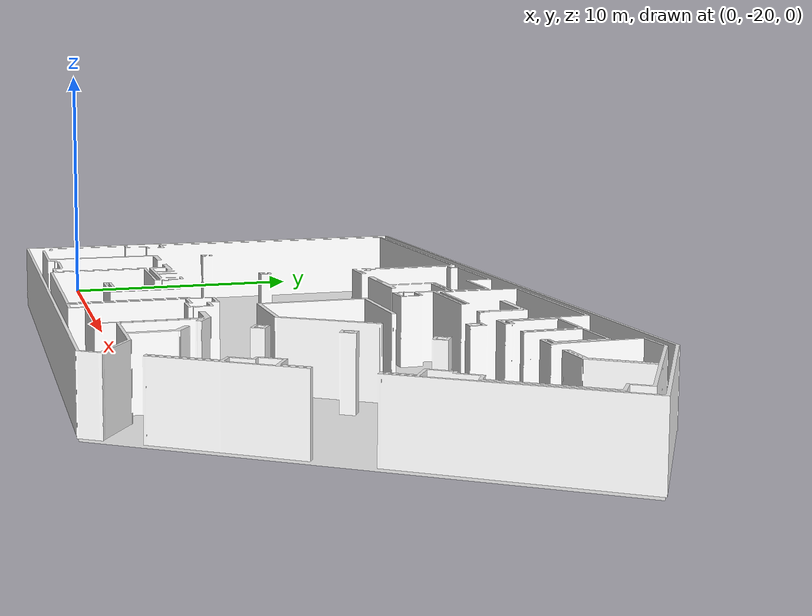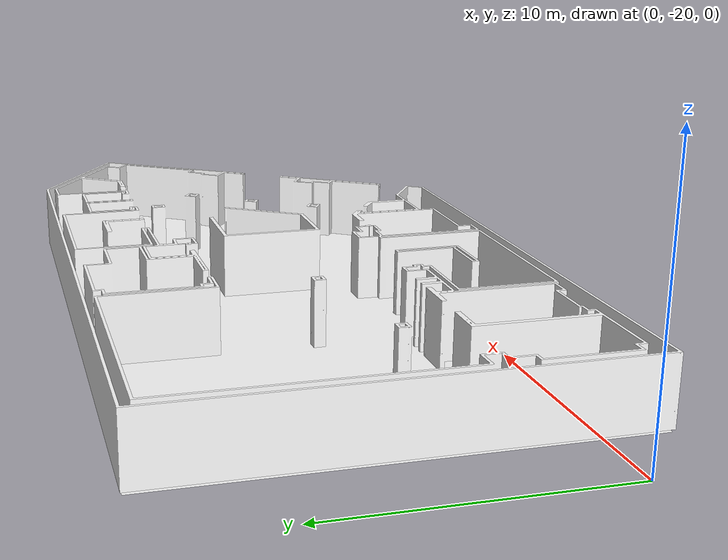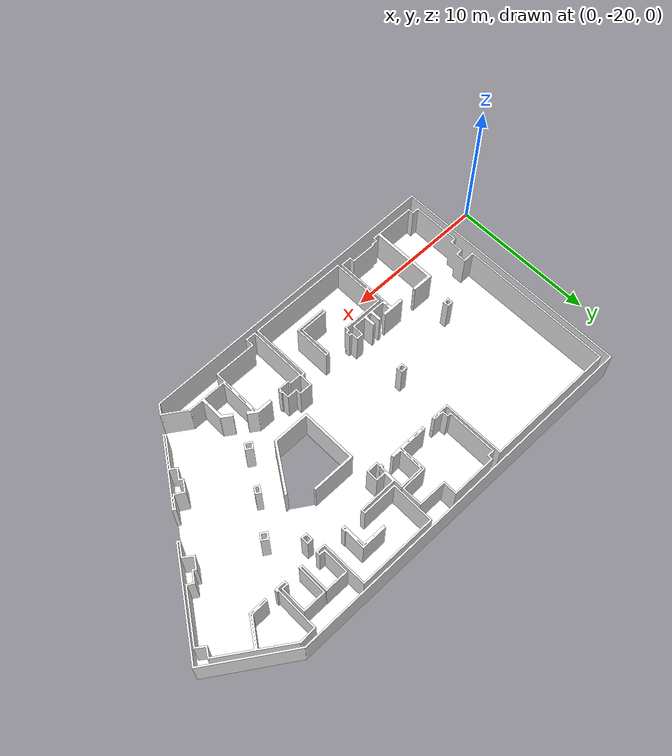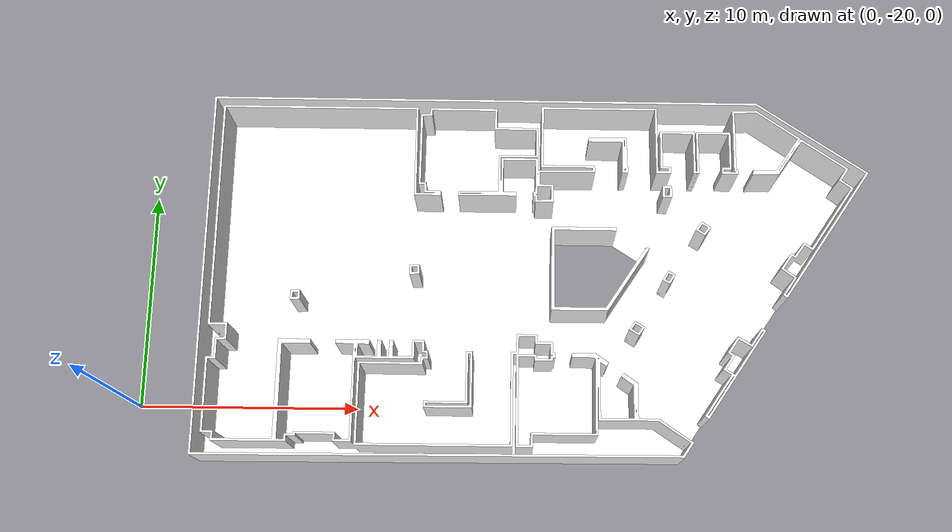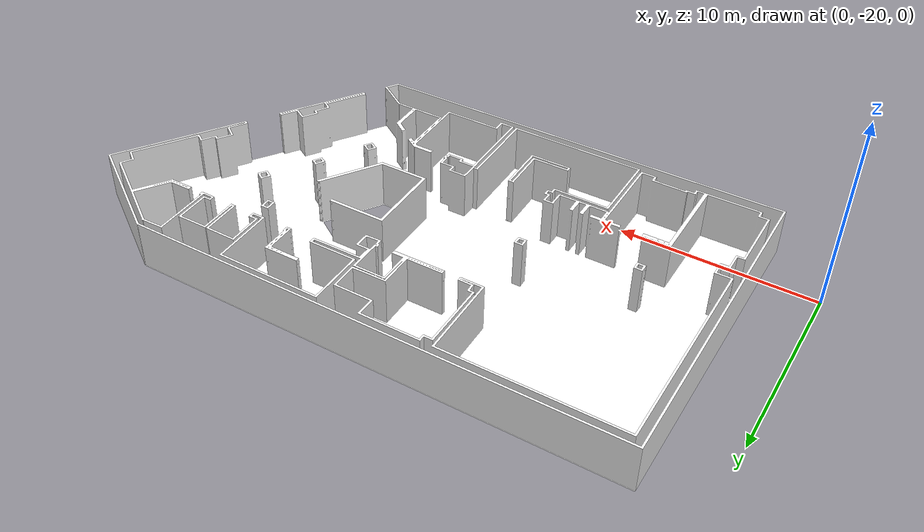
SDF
<?xml version='1.0' encoding='utf-8'?>
<sdf version="1.7">
  <model name="far_RDC">
    <static>true</static>
    <link name="floor_1">
      <visual name="visual">
        <geometry>
          <mesh>
            <uri>model://far_RDC/meshes/floor_1.obj</uri>
          </mesh>
        </geometry>
        <material>
          <diffuse>1.0 1.0 1.0</diffuse>
          <specular>0.1 0.1 0.1</specular>
          <pbr>
            <metal>
              <metalness>0.0</metalness>
              <albedo_map>model://far_RDC/meshes/blue_linoleum.png</albedo_map>
            </metal>
          </pbr>
          <script>
            <uri>model://far_RDC/meshes/</uri>
            <name>floor_1_Diffuse</name>
          </script>
        </material>
      </visual>
      <collision name="collision">
        <geometry>
          <mesh>
            <uri>model://far_RDC/meshes/floor_1.obj</uri>
          </mesh>
        </geometry>
        <surface>
          <contact>
            <collide_bitmask>0x01</collide_bitmask>
          </contact>
        </surface>
      </collision>
    </link>
    <link name="wall_1">
      <visual name="wall_1">
        <geometry>
          <mesh>
            <uri>model://far_RDC/meshes/wall_1.obj</uri>
          </mesh>
        </geometry>
        <transparency>0.0</transparency>
        <material>
          <diffuse>1.0 1.0 1.0</diffuse>
          <specular>0.1 0.1 0.1</specular>
          <pbr>
            <metal>
              <metalness>0.0</metalness>
              <albedo_map>model://far_RDC/meshes/default.png</albedo_map>
            </metal>
          </pbr>
          <script>
            <uri>model://far_RDC/meshes/</uri>
            <name>wall_1_Diffuse</name>
          </script>
        </material>
      </visual>
      <collision name="collision">
        <geometry>
          <mesh>
            <uri>model://far_RDC/meshes/wall_1.obj</uri>
          </mesh>
        </geometry>
        <surface>
          <contact>
            <collide_bitmask>0x01</collide_bitmask>
          </contact>
        </surface>
      </collision>
      <pose>2.9144658795685583 -22.462600120451665 0 0 0 0</pose>
    </link>
  </model>
</sdf>
